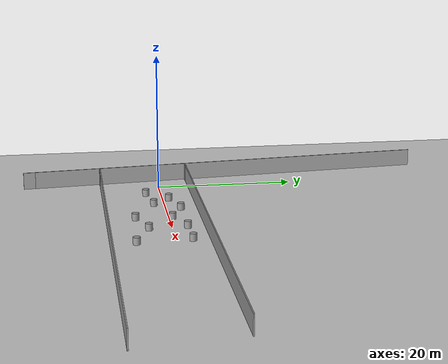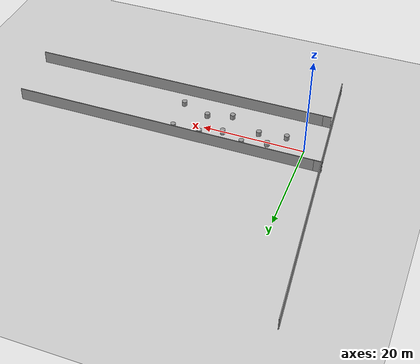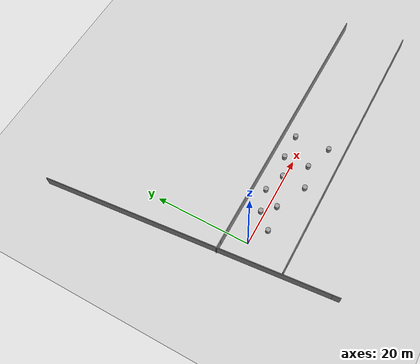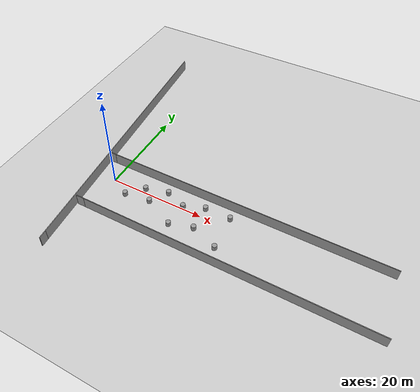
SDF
<sdf version="1.6">
 <world name="default">
  <light name="sun" type="directional">
   <pose>0 0 10 0 -0 0</pose>
   <diffuse>0.8 0.8 0.8 1</diffuse>
   <specular>0.2 0.2 0.2 1</specular>
   <attenuation>
    <range>1000</range>
    <constant>0.9</constant>
    <linear>0.01</linear>
    <quadratic>0.001</quadratic>
   </attenuation>
   <direction>-0.5 0.1 -0.9</direction>
  </light>
  <model name="ground_plane">
   <static>1</static>
   <link name="link">
    <collision name="collision">
     <geometry><plane><normal>0 0 1</normal><size>100 100</size></plane></geometry>
     <surface>
      <contact><collide_bitmask>65535</collide_bitmask></contact>
      <friction><ode><mu>100</mu><mu2>50</mu2></ode></friction>
     </surface>
    </collision>
    <visual name="visual">
     <cast_shadows>0</cast_shadows>
     <geometry><plane><normal>0 0 1</normal><size>100 100</size></plane></geometry>
     <material>
      <script><uri>file://media/materials/scripts/gazebo.material</uri><name>Gazebo/Grey</name></script>
     </material>
    </visual>
   </link>
  </model>
  <gravity>0 0 -9.8</gravity>
  <magnetic_field>6e-06 2.3e-05 -4.2e-05</magnetic_field>
  <atmosphere type="adiabatic"/>
  <physics name="default_physics" default="0" type="ode">
   <max_step_size>0.001</max_step_size>
   <real_time_factor>1</real_time_factor>
   <real_time_update_rate>1000</real_time_update_rate>
  </physics>
  <scene><ambient>0.4 0.4 0.4 1</ambient><background>0.7 0.7 0.7 1</background><shadows>1</shadows></scene>
  <audio><device>default</device></audio>
  <spherical_coordinates>
   <surface_model>EARTH_WGS84</surface_model>
   <latitude_deg>0</latitude_deg>
   <longitude_deg>0</longitude_deg>
   <elevation>0</elevation>
   <heading_deg>0</heading_deg>
  </spherical_coordinates>
  <model name="unit_cylinder">
   <pose>6.99929 0.832209 0.499992 -3e-06 3e-06 0</pose>
   <link name="link">
    <inertial>
     <mass>1</mass>
     <inertia><ixx>0.145833</ixx><ixy>0</ixy><ixz>0</ixz><iyy>0.145833</iyy><iyz>0</iyz><izz>0.125</izz></inertia>
    </inertial>
    <collision name="collision">
     <geometry><cylinder><radius>0.5</radius><length>1</length></cylinder></geometry>
    </collision>
    <visual name="visual">
     <geometry><cylinder><radius>0.5</radius><length>1</length></cylinder></geometry>
     <material>
      <script><name>Gazebo/Grey</name><uri>file://media/materials/scripts/gazebo.material</uri></script>
     </material>
    </visual>
   </link>
  </model>
  <model name="unit_cylinder_0">
   <pose>4.06146 -2.25804 0.499998 3e-06 -3e-06 0</pose>
   <link name="link">
    <inertial>
     <mass>1</mass>
     <inertia><ixx>0.145833</ixx><ixy>0</ixy><ixz>0</ixz><iyy>0.145833</iyy><iyz>0</iyz><izz>0.125</izz></inertia>
    </inertial>
    <collision name="collision">
     <geometry><cylinder><radius>0.5</radius><length>1</length></cylinder></geometry>
    </collision>
    <visual name="visual">
     <geometry><cylinder><radius>0.5</radius><length>1</length></cylinder></geometry>
     <material>
      <script><name>Gazebo/Grey</name><uri>file://media/materials/scripts/gazebo.material</uri></script>
     </material>
    </visual>
   </link>
  </model>
  <model name="unit_cylinder_1">
   <pose>11.6938 2.06939 0.499998 3e-06 -3e-06 0</pose>
   <link name="link">
    <inertial>
     <mass>1</mass>
     <inertia><ixx>0.145833</ixx><ixy>0</ixy><ixz>0</ixz><iyy>0.145833</iyy><iyz>0</iyz><izz>0.125</izz></inertia>
    </inertial>
    <collision name="collision">
     <geometry><cylinder><radius>0.5</radius><length>1</length></cylinder></geometry>
    </collision>
    <visual name="visual">
     <geometry><cylinder><radius>0.5</radius><length>1</length></cylinder></geometry>
     <material>
      <script><name>Gazebo/Grey</name><uri>file://media/materials/scripts/gazebo.material</uri></script>
     </material>
    </visual>
   </link>
  </model>
  <model name="unit_cylinder_2">
   <pose>9.38691 -1.54603 0.499998 3e-06 -3e-06 0</pose>
   <link name="link">
    <inertial>
     <mass>1</mass>
     <inertia><ixx>0.145833</ixx><ixy>0</ixy><ixz>0</ixz><iyy>0.145833</iyy><iyz>0</iyz><izz>0.125</izz></inertia>
    </inertial>
    <collision name="collision">
     <geometry><cylinder><radius>0.5</radius><length>1</length></cylinder></geometry>
    </collision>
    <visual name="visual">
     <geometry><cylinder><radius>0.5</radius><length>1</length></cylinder></geometry>
     <material>
      <script><name>Gazebo/Grey</name><uri>file://media/materials/scripts/gazebo.material</uri></script>
     </material>
    </visual>
   </link>
  </model>
  <model name="unit_cylinder_3">
   <pose>15.6885 -4.63383 0.499998 3e-06 -3e-06 0</pose>
   <link name="link">
    <inertial>
     <mass>1</mass>
     <inertia><ixx>0.145833</ixx><ixy>0</ixy><ixz>0</ixz><iyy>0.145833</iyy><iyz>0</iyz><izz>0.125</izz></inertia>
    </inertial>
    <collision name="collision">
     <geometry><cylinder><radius>0.5</radius><length>1</length></cylinder></geometry>
    </collision>
    <visual name="visual">
     <geometry><cylinder><radius>0.5</radius><length>1</length></cylinder></geometry>
     <material>
      <script><name>Gazebo/Grey</name><uri>file://media/materials/scripts/gazebo.material</uri></script>
     </material>
    </visual>
   </link>
  </model>
  <model name="unit_cylinder_4">
   <pose>15.969 0.435377 0.499998 3e-06 -3e-06 0</pose>
   <link name="link">
    <inertial>
     <mass>1</mass>
     <inertia><ixx>0.145833</ixx><ixy>0</ixy><ixz>0</ixz><iyy>0.145833</iyy><iyz>0</iyz><izz>0.125</izz></inertia>
    </inertial>
    <collision name="collision">
     <geometry><cylinder><radius>0.5</radius><length>1</length></cylinder></geometry>
    </collision>
    <visual name="visual">
     <geometry><cylinder><radius>0.5</radius><length>1</length></cylinder></geometry>
     <material>
      <script><name>Gazebo/Grey</name><uri>file://media/materials/scripts/gazebo.material</uri></script>
     </material>
    </visual>
   </link>
  </model>
  <model name="unit_cylinder_5">
   <pose>20.1456 2.07583 0.499998 3e-06 -4e-06 0</pose>
   <link name="link">
    <inertial>
     <mass>1</mass>
     <inertia><ixx>0.145833</ixx><ixy>0</ixy><ixz>0</ixz><iyy>0.145833</iyy><iyz>0</iyz><izz>0.125</izz></inertia>
    </inertial>
    <collision name="collision">
     <geometry><cylinder><radius>0.5</radius><length>1</length></cylinder></geometry>
    </collision>
    <visual name="visual">
     <geometry><cylinder><radius>0.5</radius><length>1</length></cylinder></geometry>
     <material>
      <script><name>Gazebo/Grey</name><uri>file://media/materials/scripts/gazebo.material</uri></script>
     </material>
    </visual>
   </link>
  </model>
  <model name="unit_cylinder_6">
   <pose>20.4307 -3.17791 0.499992 -3e-06 4e-06 0</pose>
   <link name="link">
    <inertial>
     <mass>1</mass>
     <inertia><ixx>0.145833</ixx><ixy>0</ixy><ixz>0</ixz><iyy>0.145833</iyy><iyz>0</iyz><izz>0.125</izz></inertia>
    </inertial>
    <collision name="collision">
     <geometry><cylinder><radius>0.5</radius><length>1</length></cylinder></geometry>
    </collision>
    <visual name="visual">
     <geometry><cylinder><radius>0.5</radius><length>1</length></cylinder></geometry>
     <material>
      <script><name>Gazebo/Grey</name><uri>file://media/materials/scripts/gazebo.material</uri></script>
     </material>
    </visual>
   </link>
  </model>
  <model name="unit_cylinder_7">
   <pose>25.5153 2.11295 0.499992 -3e-06 4e-06 0</pose>
   <link name="link">
    <inertial>
     <mass>1</mass>
     <inertia><ixx>0.145833</ixx><ixy>0</ixy><ixz>0</ixz><iyy>0.145833</iyy><iyz>0</iyz><izz>0.125</izz></inertia>
    </inertial>
    <collision name="collision">
     <geometry><cylinder><radius>0.5</radius><length>1</length></cylinder></geometry>
    </collision>
    <visual name="visual">
     <geometry><cylinder><radius>0.5</radius><length>1</length></cylinder></geometry>
     <material>
      <script><name>Gazebo/Grey</name><uri>file://media/materials/scripts/gazebo.material</uri></script>
     </material>
    </visual>
   </link>
  </model>
  <model name="unit_cylinder_8">
   <pose>26.0064 -5.24581 0.499998 3e-06 -4e-06 0</pose>
   <link name="link">
    <inertial>
     <mass>1</mass>
     <inertia><ixx>0.145833</ixx><ixy>0</ixy><ixz>0</ixz><iyy>0.145833</iyy><iyz>0</iyz><izz>0.125</izz></inertia>
    </inertial>
    <collision name="collision">
     <geometry><cylinder><radius>0.5</radius><length>1</length></cylinder></geometry>
    </collision>
    <visual name="visual">
     <geometry><cylinder><radius>0.5</radius><length>1</length></cylinder></geometry>
     <material>
      <script><name>Gazebo/Grey</name><uri>file://media/materials/scripts/gazebo.material</uri></script>
     </material>
    </visual>
   </link>
  </model>
  <model name="wall_up02">
   <pose>26.3188 4.46212 0 0 -0 0</pose>
   <link name="Wall_0">
    <collision name="Wall_0_Collision">
     <geometry><box><size>60 0.15 2.5</size></box></geometry>
     <pose>0 0 1.25 0 -0 0</pose>
    </collision>
    <visual name="Wall_0_Visual">
     <pose>0 0 1.25 0 -0 0</pose>
     <geometry><box><size>60 0.15 2.5</size></box></geometry>
     <material>
      <script><uri>file://media/materials/scripts/gazebo.material</uri><name>Gazebo/Grey</name></script>
      <ambient>1 1 1 1</ambient>
     </material>
     <meta><layer>0</layer></meta>
    </visual>
    <pose>0.799999 0 0 0 -0 3.14159</pose>
   </link>
   <link name="Wall_1">
    <collision name="Wall_1_Collision">
     <geometry><box><size>1.75 0.15 2.5</size></box></geometry>
     <pose>0 0 1.25 0 -0 0</pose>
    </collision>
    <visual name="Wall_1_Visual">
     <pose>0 0 1.25 0 -0 0</pose>
     <geometry><box><size>1.75 0.15 2.5</size></box></geometry>
     <material>
      <script><uri>file://media/materials/scripts/gazebo.material</uri><name>Gazebo/Grey</name></script>
      <ambient>0 0 0 1</ambient>
     </material>
     <meta><layer>0</layer></meta>
    </visual>
    <pose>-29.925 0 0 0 -0 3.14159</pose>
   </link>
   <static>1</static>
  </model>
  <model name="wall_up02_clone">
   <pose>28.0229 -8.63842 0 0 -0 0</pose>
   <link name="Wall_0">
    <collision name="Wall_0_Collision">
     <geometry><box><size>60 0.15 2.5</size></box></geometry>
     <pose>0 0 1.25 0 -0 0</pose>
    </collision>
    <visual name="Wall_0_Visual">
     <pose>0 0 1.25 0 -0 0</pose>
     <geometry><box><size>60 0.15 2.5</size></box></geometry>
     <material>
      <script><uri>file://media/materials/scripts/gazebo.material</uri><name>Gazebo/Grey</name></script>
      <ambient>1 1 1 1</ambient>
     </material>
     <meta><layer>0</layer></meta>
    </visual>
    <pose>0.799999 0 0 0 -0 3.14159</pose>
   </link>
   <link name="Wall_1">
    <collision name="Wall_1_Collision">
     <geometry><box><size>1.75 0.15 2.5</size></box></geometry>
     <pose>0 0 1.25 0 -0 0</pose>
    </collision>
    <visual name="Wall_1_Visual">
     <pose>0 0 1.25 0 -0 0</pose>
     <geometry><box><size>1.75 0.15 2.5</size></box></geometry>
     <material>
      <script><uri>file://media/materials/scripts/gazebo.material</uri><name>Gazebo/Grey</name></script>
      <ambient>0 0 0 1</ambient>
     </material>
     <meta><layer>0</layer></meta>
    </visual>
    <pose>-29.925 0 0 0 -0 3.14159</pose>
   </link>
   <static>1</static>
  </model>
  <model name="wall_up02_clone_0">
   <pose>-4.8199 10.6285 0 0 -0 1.65998</pose>
   <link name="Wall_0">
    <collision name="Wall_0_Collision">
     <geometry><box><size>60 0.15 2.5</size></box></geometry>
     <pose>0 0 1.25 0 -0 0</pose>
    </collision>
    <visual name="Wall_0_Visual">
     <pose>0 0 1.25 0 -0 0</pose>
     <geometry><box><size>60 0.15 2.5</size></box></geometry>
     <material>
      <script><uri>file://media/materials/scripts/gazebo.material</uri><name>Gazebo/Grey</name></script>
      <ambient>1 1 1 1</ambient>
     </material>
     <meta><layer>0</layer></meta>
    </visual>
    <pose>0.799999 0 0 0 -0 3.14159</pose>
   </link>
   <link name="Wall_1">
    <collision name="Wall_1_Collision">
     <geometry><box><size>1.75 0.15 2.5</size></box></geometry>
     <pose>0 0 1.25 0 -0 0</pose>
    </collision>
    <visual name="Wall_1_Visual">
     <pose>0 0 1.25 0 -0 0</pose>
     <geometry><box><size>1.75 0.15 2.5</size></box></geometry>
     <material>
      <script><uri>file://media/materials/scripts/gazebo.material</uri><name>Gazebo/Grey</name></script>
      <ambient>0 0 0 1</ambient>
     </material>
     <meta><layer>0</layer></meta>
    </visual>
    <pose>-29.925 0 0 0 -0 3.14159</pose>
   </link>
   <static>1</static>
  </model>
 </world>
</sdf>
